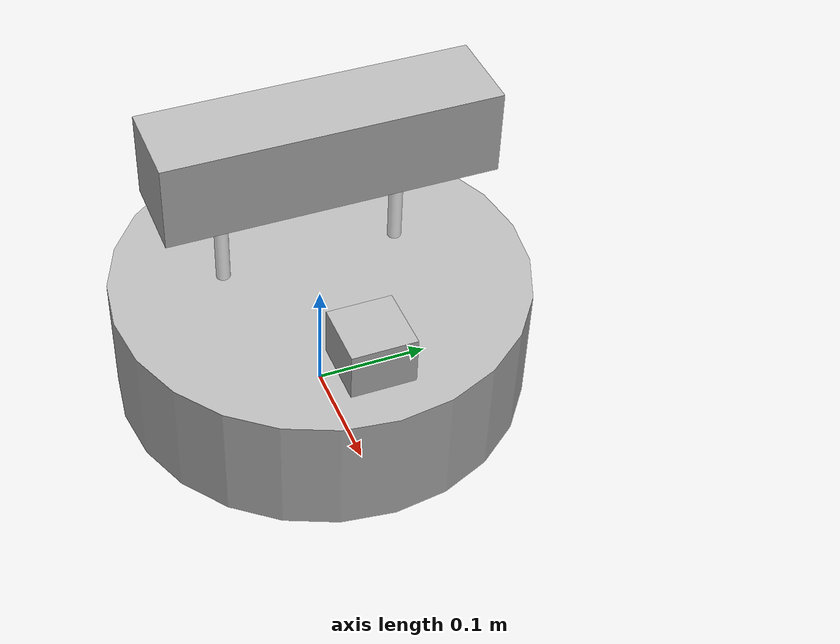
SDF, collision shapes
<sdf version='1.6'>

    <model name='tbot'>

    <!-- *********************** kobuki_model ***************************    -->
      <link name='base_footprint'>
        <pose frame=''>0 0 0 0 0 0</pose>
        <inertial>
          <pose frame=''>0.009866 2.6e-05 0.010277 0 -0 0</pose>
          <mass>2.4213</mass>
          <inertia>
            <ixx>0.0224044</ixx>
            <ixy>-2.89213e-06</ixy>
            <ixz>4.10737e-06</ixz>
            <iyy>0.0226237</iyy>
            <iyz>-1.24762e-06</iyz>
            <izz>0.0394834</izz>
          </inertia>
        </inertial>
        <collision name='base_footprint_fixed_joint_lump__base_collision'>
          <pose frame=''>0 0 0.06969 0 -0 0</pose>
          <geometry>
            <cylinder>
              <length>0.10938</length>
              <radius>0.178</radius>
            </cylinder>
          </geometry>
        </collision>
        <collision name='base_footprint_fixed_joint_lump__caster_back_link_collision_1'>
          <pose frame=''>-0.135 0 0.0192 -1.5708 0 0</pose>
          <geometry>
            <cylinder>
              <length>0.0176</length>
              <radius>0.017</radius>
            </cylinder>
          </geometry>
          <surface>
            <contact>
              <ode>
                <kp>1e+06</kp>
                <kd>100</kd>
                <max_vel>1</max_vel>
                <min_depth>0.001</min_depth>
              </ode>
            </contact>
            <friction>
              <ode>
                <mu>0</mu>
                <mu2>0</mu2>
              </ode>
            </friction>
          </surface>
        </collision>
        <collision name='base_footprint_fixed_joint_lump__caster_front_link_collision_2'>
          <pose frame=''>0.115 0 0.0172 -1.5708 0 0</pose>
          <geometry>
            <cylinder>
              <length>0.0176</length>
              <radius>0.017</radius>
            </cylinder>
          </geometry>
          <surface>
            <contact>
              <ode>
                <kp>1e+06</kp>
                <kd>100</kd>
                <max_vel>1</max_vel>
                <min_depth>0.001</min_depth>
              </ode>
            </contact>
            <friction>
              <ode>
                <mu>0</mu>
                <mu2>0</mu2>
              </ode>
            </friction>
          </surface>
        </collision>
        <visual name='base_footprint_fixed_joint_lump__base_link_visual'>
          <pose frame=''>0.001 0 0.06219 0 -0 0</pose>
          <geometry>
            <mesh>
              <scale>1 1 1</scale>
              <uri>model://kobuki_model/meshes/main_body.dae</uri>
            </mesh>
          </geometry>
          <material>
            <script>
              <uri>__default__</uri>
              <name>__default__</name>
            </script>
          </material>
        </visual>
        <velocity_decay/>
        <sensor name='bumpers' type='contact'>
          <always_on>1</always_on>
          <update_rate>50</update_rate>
          <visualize>1</visualize>
          <contact>
            <collision>base_footprint_fixed_joint_lump__base_collision</collision>
            <topic>__default_topic__</topic>
          </contact>
          <pose frame=''>0 0 0.0102 0 -0 0</pose>
        </sensor>
        <velocity_decay/>
        <velocity_decay/>
        <velocity_decay/>
        <sensor name='cliff_sensor_front' type='ray'>
          <always_on>1</always_on>
          <update_rate>50</update_rate>
          <visualize>1</visualize>
          <ray>
            <scan>
              <horizontal>
                <samples>50</samples>
                <resolution>1</resolution>
                <min_angle>-0.0436</min_angle>
                <max_angle>0.0436</max_angle>
              </horizontal>
            </scan>
            <range>
              <min>0.01</min>
              <max>0.15</max>
              <resolution>1</resolution>
            </range>
          </ray>
          <pose frame=''>0.156 0 0.0316 3.14159 1.57079 3.14159</pose>
        </sensor>
        <velocity_decay/>
        <sensor name='cliff_sensor_left' type='ray'>
          <always_on>1</always_on>
          <update_rate>50</update_rate>
          <visualize>1</visualize>
          <ray>
            <scan>
              <horizontal>
                <samples>50</samples>
                <resolution>1</resolution>
                <min_angle>-0.0436</min_angle>
                <max_angle>0.0436</max_angle>
              </horizontal>
            </scan>
            <range>
              <min>0.01</min>
              <max>0.15</max>
              <resolution>1</resolution>
            </range>
          </ray>
          <pose frame=''>0.08734 0.13601 0.0316 3.14159 1.57079 3.14159</pose>
        </sensor>
        <velocity_decay/>
        <sensor name='cliff_sensor_right' type='ray'>
          <always_on>1</always_on>
          <update_rate>50</update_rate>
          <visualize>1</visualize>
          <ray>
            <scan>
              <horizontal>
                <samples>50</samples>
                <resolution>1</resolution>
                <min_angle>-0.0436</min_angle>
                <max_angle>0.0436</max_angle>
              </horizontal>
            </scan>
            <range>
              <min>0.01</min>
              <max>0.15</max>
              <resolution>1</resolution>
            </range>
          </ray>
          <pose frame=''>0.085 -0.13601 0.0316 3.14159 1.57079 3.14159</pose>

        </sensor>
        <gravity>1</gravity>
        <velocity_decay/>
      </link>

      <!-- imu_joint -->
      <joint name="gyro_joint" type="fixed">
        <parent>base_link</parent>
        <child>imu_link</child>
        <pose>0.056 0.062 0.0202 0 0 0</pose>
        <axis>
          <xyz>0 1 0</xyz>
        </axis>
      </joint>

      <link name="imu_link">
        <sensor name='imu' type='imu'>
          <always_on>1</always_on>
          <update_rate>50</update_rate>
          <visualize>0</visualize>
          <imu>
            <angular_velocity>
              <x>
                <noise type='gaussian'>
                  <mean>0</mean>
                  <stddev>1.96e-06</stddev>
                  <bias_mean>0</bias_mean>
                  <bias_stddev>0</bias_stddev>
                </noise>
              </x>
              <y>
                <noise type='gaussian'>
                  <mean>0</mean>
                  <stddev>1.96e-06</stddev>
                  <bias_mean>0</bias_mean>
                  <bias_stddev>0</bias_stddev>
                </noise>
              </y>
              <z>
                <noise type='gaussian'>
                  <mean>0</mean>
                  <stddev>1.96e-06</stddev>
                  <bias_mean>0</bias_mean>
                  <bias_stddev>0</bias_stddev>
                </noise>
              </z>
            </angular_velocity>
            <linear_acceleration>
              <x>
                <noise type='gaussian'>
                  <mean>0</mean>
                  <stddev>0.017</stddev>
                  <bias_mean>0.1</bias_mean>
                  <bias_stddev>0.001</bias_stddev>
                </noise>
              </x>
              <y>
                <noise type='gaussian'>
                  <mean>0</mean>
                  <stddev>0.017</stddev>
                  <bias_mean>0.1</bias_mean>
                  <bias_stddev>0.001</bias_stddev>
                </noise>
              </y>
              <z>
                <noise type='gaussian'>
                  <mean>0</mean>
                  <stddev>0.017</stddev>
                  <bias_mean>0.1</bias_mean>
                  <bias_stddev>0.001</bias_stddev>
                </noise>
              </z>
            </linear_acceleration>
          </imu>
          <plugin name="kobuki_imu" filename="libgazebo_ros_imu_sensor.so">
            <ros>
              <remapping>out:=imu</remapping>
            </ros>
          </plugin>
          <pose frame=''>0.056 0.062 0.0202 0 -0 0</pose>
        </sensor>
      </link>

    <!-- base_link -->
    <joint name="base_joint" type="fixed">
      <parent>base_footprint</parent>
      <child> base_link</child>
      <pose>0 0 0.01 0 0 0</pose>
    </joint>

    <link name="base_link">
      <inertial>
        <pose>0.01 0 0 0 0 0 </pose>
        <inertia>
            <ixx>0.019995</ixx>
            <ixy>0.000</ixy>
            <ixz>0.000</ixz>
            <iyy>0.019995</iyy>
            <iyz>0.000</iyz>
            <izz>0.03675</izz>
        </inertia>
        <mass>2.4</mass>
      </inertial>
    </link>

    <!-- Laser Link -->
      <joint name="laser_joint" type="fixed">
          <parent>base_link</parent>
          <child>laser_link</child>
          <axis>
            <xyz>0 0 1</xyz>
          </axis>
      </joint>

      <link name="laser_link">
        <pose>0.115 0.0 0.13 0 0 0</pose>
        <inertial>
          <mass>0.1</mass>
        </inertial>
        <visual name="visual">
          <geometry>
            <mesh>
              <uri>model://kobuki_model/meshes/hokuyo.dae</uri>
            </mesh>
          </geometry>
        </visual>
        <collision name="collision-laser">
          <pose>0 0 -0.001 0.0 0 0</pose>
          <geometry>
            <box>
              <size>0.055 0.055 0.075</size>
            </box>
          </geometry>
        </collision>
      <!-- HOKUYO URG-04LX-UG1 -->
        <!-- 4m range -->
        <!-- detection_angle 240 degrees -->
        <!-- angle_resolution 0.36 degrees -->
        <!-- update_rate 10Hz -->

      <!-- HOKUYO UST-10LX-UG1 -->
        <!-- 10m range -->
        <!-- 270 degrees -->
        <!-- 0.25 degrees -->
        <!-- update_rate 40Hz -->
        <sensor name="hokuyo_sensor" type="ray">
          <always_on>true</always_on>
          <visualize>true</visualize>
          <pose>0.0 0 0.025 0 0 0</pose>
          <update_rate>30</update_rate>
          <ray>
            <scan>
              <horizontal>
                <samples>270</samples>
                <resolution>1.00</resolution>
                <min_angle>-2.355796</min_angle>
                <max_angle>2.355796</max_angle>
              </horizontal>
            </scan>
            <range>
              <min>0.06</min>
              <max>10.0</max>
              <resolution>0.001</resolution>
            </range>
            <noise>
              <type>gaussian</type>
              <mean>0.0</mean>
              <stddev>0.01</stddev>
            </noise>
          </ray>
          <plugin name="hokuyo_controller" filename="libgazebo_ros_ray_sensor.so">
            <ros>
              <remapping>~/out:=scan</remapping>
            </ros>
            <output_type>sensor_msgs/LaserScan</output_type>
            <frame_name>laser_link</frame_name>
          </plugin>
        </sensor>
      </link>

      <link name='wheel_left_link'>
        <pose frame=''>0 0.115 0.0352 -1.5708 0 0</pose>
        <inertial>
          <pose frame=''>0 0 0 0 -0 0</pose>
          <mass>0.01</mass>
          <inertia>
            <ixx>0.001</ixx>
            <ixy>0</ixy>
            <ixz>0</ixz>
            <iyy>0.001</iyy>
            <iyz>0</iyz>
            <izz>0.001</izz>
          </inertia>
        </inertial>
        <collision name='wheel_left_link_collision'>
          <pose frame=''>0 0 0 0 -0 0</pose>
          <geometry>
            <cylinder>
              <length>0.0206</length>
              <radius>0.0352</radius>
            </cylinder>
          </geometry>
          <surface>
            <contact>
              <ode>
                <kp>1e+06</kp>
                <kd>100</kd>
                <max_vel>1</max_vel>
                <min_depth>0.001</min_depth>
              </ode>
            </contact>
            <friction>
              <ode>
                <mu>1</mu>
                <mu2>1</mu2>
              </ode>
            </friction>
          </surface>
        </collision>
        <visual name='wheel_left_link_visual'>
          <pose frame=''>0 0 0 0 -0 0</pose>
          <geometry>
            <mesh>
              <scale>1 1 1</scale>
              <uri>model://kobuki_model/meshes/wheel.dae</uri>
            </mesh>
          </geometry>
          <material>
            <script>
              <uri>__default__</uri>
              <name>__default__</name>
            </script>
          </material>
        </visual>
        <gravity>1</gravity>
        <velocity_decay/>
      </link>
      <joint name='wheel_left_joint' type='revolute'>
        <child>wheel_left_link</child>
        <parent>base_footprint</parent>
        <axis>
          <xyz>0 1 0</xyz>
          <limit>
            <lower>-1e+16</lower>
            <upper>1e+16</upper>
          </limit>
          <dynamics>
            <spring_reference>0</spring_reference>
            <spring_stiffness>0</spring_stiffness>
          </dynamics>
          <use_parent_model_frame>1</use_parent_model_frame>
        </axis>
      </joint>
      <link name='wheel_right_link'>
        <pose frame=''>0 -0.115 0.0352 -1.5708 0 0</pose>
        <inertial>
          <pose frame=''>0 0 0 0 -0 0</pose>
          <mass>0.01</mass>
          <inertia>
            <ixx>0.001</ixx>
            <ixy>0</ixy>
            <ixz>0</ixz>
            <iyy>0.001</iyy>
            <iyz>0</iyz>
            <izz>0.001</izz>
          </inertia>
        </inertial>
        <collision name='wheel_right_link_collision'>
          <pose frame=''>0 0 0 0 -0 0</pose>
          <geometry>
            <cylinder>
              <length>0.0206</length>
              <radius>0.035</radius>
            </cylinder>
          </geometry>
          <surface>
            <contact>
              <ode>
                <kp>1e+06</kp>
                <kd>100</kd>
                <max_vel>1</max_vel>
                <min_depth>0.001</min_depth>
              </ode>
            </contact>
            <friction>
              <ode>
                <mu>1</mu>
                <mu2>1</mu2>
              </ode>
            </friction>
          </surface>
        </collision>
        <visual name='wheel_right_link_visual'>
          <pose frame=''>0 0 0 0 -0 0</pose>
          <geometry>
            <mesh>
              <scale>1 1 1</scale>
              <uri>model://kobuki_model/meshes/wheel.dae</uri>
            </mesh>
          </geometry>
          <material>
            <script>
              <uri>__default__</uri>
              <name>__default__</name>
            </script>
          </material>
        </visual>
        <gravity>1</gravity>
        <velocity_decay/>
      </link>
      <joint name='wheel_right_joint' type='revolute'>
        <child>wheel_right_link</child>
        <parent>base_footprint</parent>
        <axis>
          <xyz>0 1 0</xyz>
          <limit>
            <lower>-1e+16</lower>
            <upper>1e+16</upper>
          </limit>
          <dynamics>
            <spring_reference>0</spring_reference>
            <spring_stiffness>0</spring_stiffness>
          </dynamics>
          <use_parent_model_frame>1</use_parent_model_frame>
        </axis>
      </joint>
      <static>0</static>

      <plugin name="kobuki_diff_drive" filename="libgazebo_ros_diff_drive.so">
        <ros>
        </ros>
        <update_rate>30</update_rate>

        <!--wheels-->
        <left_joint>wheel_left_joint</left_joint>
        <right_joint>wheel_right_joint</right_joint>

        <!--kinematics-->
        <wheel_separation>.230</wheel_separation>
        <wheel_diameter>0.070</wheel_diameter>

        <!-- limits -->
        <torque>1.0</torque>
        <velocity_command_timeout>0.6</velocity_command_timeout>

        <command_topic>cmd_vel</command_topic>

        <!-- output -->
        <publish_odom>true</publish_odom>
        <publish_odom_tf>true</publish_odom_tf>

        <publish_wheel_tf>false</publish_wheel_tf>

        <odometry_topic>odom</odometry_topic>
        <odometry_frame>odom</odometry_frame>
        <robot_base_frame>base_footprint</robot_base_frame>
      </plugin>

      <plugin name="kobuki_joint_state" filename="libgazebo_ros_joint_state_publisher.so">
        <ros>
              <remapping>~/out:=joint_states</remapping>
        </ros>
        <update_rate>30</update_rate>
        <joint_name>wheel_left_joint</joint_name>
        <joint_name>wheel_right_joint</joint_name>
      </plugin>

    <joint name="kinect_support_joint" type="fixed">
          <parent>base_link</parent>
          <child>kinect_support</child>
          <use_parent_model_frame>true</use_parent_model_frame>
    </joint>
    <link name="kinect_support">
       <collision name="standoff_0_kinect_collision">
        <pose>-0.025 -0.077 0.186 0 0 0</pose>
        <geometry>
          <cylinder>
            <radius>0.006</radius>
            <length>0.18</length>
          </cylinder>
        </geometry>
      </collision>
      <visual name="standoff_0_kinect_visual">
        <pose>-0.025 -0.077 0.186 0 0 0</pose>
        <geometry>
          <cylinder>
            <radius>0.006</radius>
            <length>0.18</length>
          </cylinder>
        </geometry>
        <material>
          <ambient>0.33 0.33 0.33 0</ambient>
          <diffuse>1 1 1 1</diffuse>
          <specular>0 0 0 0</specular>
          <emissive>0 0 0 0</emissive>
        </material>
      </visual>

      <collision name="standoff_1_kinect_collision">
        <pose>-0.025 0.077 0.186 0 0 0</pose>
        <geometry>
          <cylinder>
            <radius>0.006</radius>
            <length>0.18</length>
          </cylinder>
        </geometry>
      </collision>
      <visual name="standoff_1_kinect_visual">
        <pose>-0.025 0.077 0.186 0 0 0</pose>
        <geometry>
          <cylinder>
            <radius>0.006</radius>
            <length>0.18</length>
          </cylinder>
        </geometry>
        <material>
          <ambient>0.33 0.33 0.33 0</ambient>
          <diffuse>1 1 1 1</diffuse>
          <specular>0 0 0 0</specular>
          <emissive>0 0 0 0</emissive>
        </material>
      </visual>

  </link>

  <!-- *********************** KINECT ***************************    -->
  <joint name="kinect_joint" type="fixed">
    <parent>kinect_support</parent>
    <child>camera_link</child>
    <axis>
      <xyz>0 0 1</xyz>
    </axis>
  </joint>

    <link name="camera_link">
      <inertial>
        <mass>0.1</mass>
      </inertial>
      <collision name="collision">
        <pose>0.0 0.0 0.26 0 0 0</pose>
        <geometry>
          <box>
            <size>0.073000 0.276000 0.072000</size>
          </box>
        </geometry>
      </collision>
      <visual name="visual">
        <pose>0.0 0.0 0.26 0 0 0</pose>
        <geometry>
          <mesh>
            <uri>model://kinect/meshes/kinect.dae</uri>
          </mesh>
        </geometry>
      </visual>
      <sensor name="camera" type="depth">
        <pose>0.0 0 0.295 0 0 0</pose>
        <update_rate>20</update_rate>
        <camera>
          <horizontal_fov>1.047198</horizontal_fov>
          <image>
            <width>640</width>
            <height>480</height>
            <format>R8G8B8</format>
          </image>
          <clip>
            <near>0.05</near>
            <far>3</far>
          </clip>
        </camera>
        <plugin name="camera_controller" filename="libgazebo_ros_camera.so">
          <alwaysOn>true</alwaysOn>
          <updateRate>0.0</updateRate>
          <cameraName>camera</cameraName>
          <imageTopicName>image_raw</imageTopicName>
          <cameraInfoTopicName>camera_info</cameraInfoTopicName>
          <frameName>camera_link</frameName>
          <hackBaseline>0.07</hackBaseline>
          <distortionK1>0.0</distortionK1>
          <distortionK2>0.0</distortionK2>
          <distortionK3>0.0</distortionK3>
          <distortionT1>0.0</distortionT1>
          <distortionT2>0.0</distortionT2>
        </plugin>
      </sensor>
    </link>

  </model>
</sdf>
